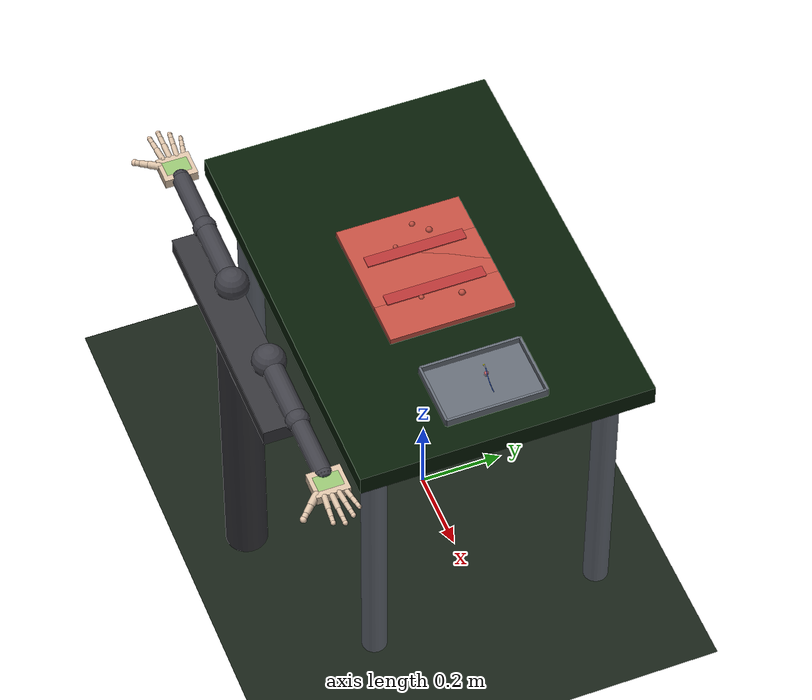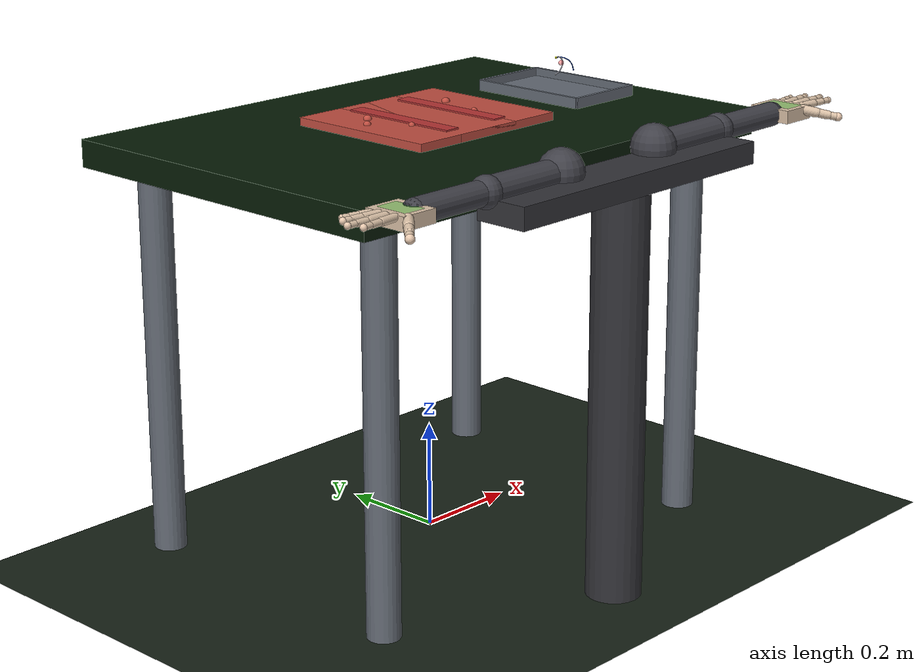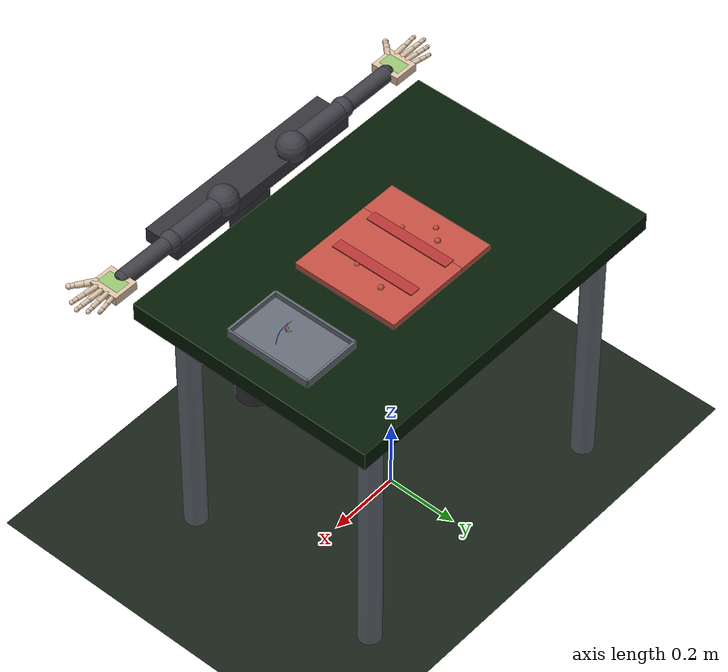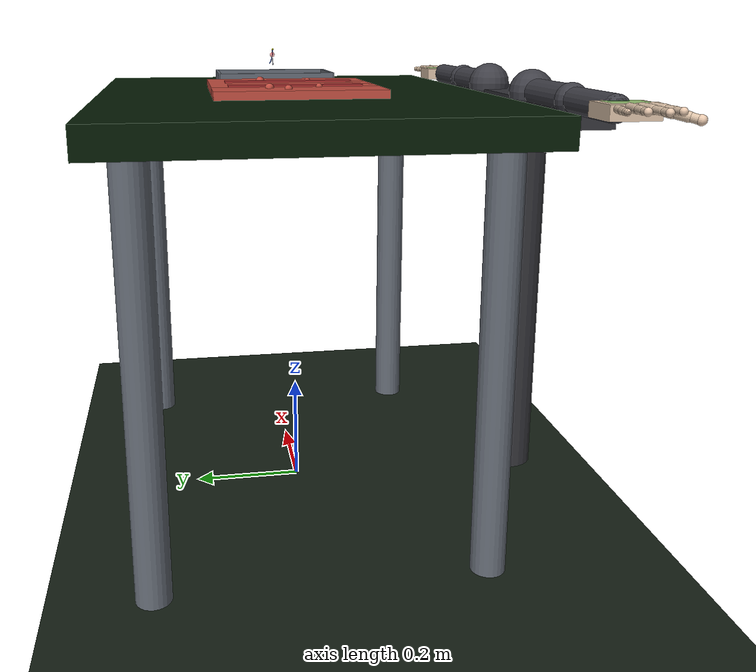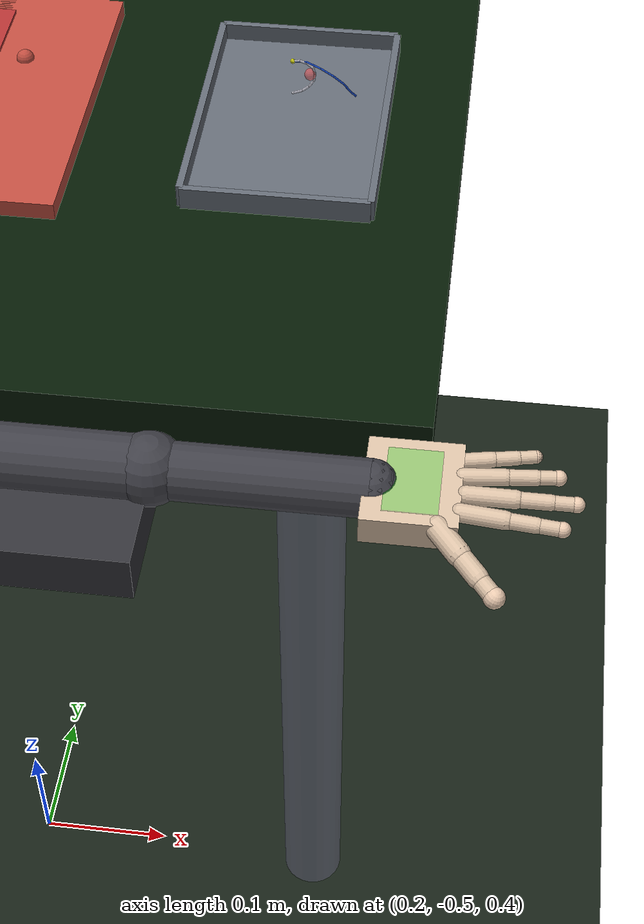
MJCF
<mujoco model="prometheus_surgical_robot">  <compiler autolimits="true" angle="radian"/>  <option timestep="0.001" integrator="Euler" cone="elliptic" solver="CG"          iterations="100" tolerance="1e-8" gravity="0 0 -9.81">    <flag contact="enable" constraint="enable" sensor="enable"/>  </option>  <size nconmax="2000" njmax="4000"/>  <!-- GòÉGòÉGòÉGòÉGòÉGòÉGòÉGòÉGòÉGòÉGòÉGòÉGòÉGòÉGòÉGòÉGòÉGòÉGòÉ VISUAL SETTINGS GòÉGòÉGòÉGòÉGòÉGòÉGòÉGòÉGòÉGòÉGòÉGòÉGòÉGòÉGòÉGòÉGòÉGòÉGòÉ -->  <visual>    <headlight diffuse="0.6 0.6 0.6" ambient="0.3 0.3 0.3" specular="0.2 0.2 0.2"/>    <rgba haze="0.15 0.25 0.35 1"/>    <quality shadowsize="4096"/>    <map znear="0.001" zfar="50" force="0.05"/>    <global offwidth="1920" offheight="1080"/>  </visual>  <!-- GòÉGòÉGòÉGòÉGòÉGòÉGòÉGòÉGòÉGòÉGòÉGòÉGòÉGòÉGòÉGòÉGòÉGòÉGòÉ DEFAULTS GòÉGòÉGòÉGòÉGòÉGòÉGòÉGòÉGòÉGòÉGòÉGòÉGòÉGòÉGòÉGòÉGòÉGòÉGòÉ -->  <default>    <!-- Arm defaults -->    <default class="arm_joint">      <joint type="hinge" damping="20.0" armature="1.0" frictionloss="1.0"/>      <geom type="capsule" rgba="0.25 0.25 0.28 1" contype="0" conaffinity="0"/>    </default>    <!-- Hand defaults -->    <default class="finger_joint">      <joint type="hinge" damping="1.0" armature="0.1" frictionloss="0.1"/>    </default>    <default class="finger_geom">      <geom type="capsule" rgba="0.85 0.75 0.65 1" contype="0" conaffinity="0"            friction="1.5 0.005 0.001" solimp="0.95 0.99 0.001" solref="0.004 1"/>    </default>    <default class="fingertip_geom">      <geom type="sphere" rgba="0.90 0.78 0.68 1" contype="0" conaffinity="0"            friction="2.0 0.01 0.001" solimp="0.95 0.99 0.001" solref="0.004 1"/>    </default>    <!-- Surgical tool defaults -->    <default class="needle_geom">      <geom type="capsule" rgba="0.75 0.75 0.80 1" contype="2" conaffinity="3"            friction="1.0 0.005 0.001" mass="0.005"/>    </default>    <default class="thread_geom">      <geom type="capsule" rgba="0.1 0.3 0.8 1" contype="2" conaffinity="3"            friction="0.8 0.005 0.001" mass="0.01"/>    </default>    <!-- Tissue defaults -->    <default class="tissue_geom">      <geom type="box" rgba="0.85 0.55 0.50 1" contype="4" conaffinity="7"            friction="1.2 0.01 0.001" solimp="0.90 0.95 0.005" solref="0.01 1.5"/>    </default>    <!-- Actuator defaults -->    <default class="arm_actuator">      <position kp="500" kv="50" ctrlrange="-3.14 3.14" forcerange="-200 200"/>    </default>    <default class="finger_actuator">      <position kp="10" kv="1" forcerange="-5 5"/>    </default>  </default>  <!-- GòÉGòÉGòÉGòÉGòÉGòÉGòÉGòÉGòÉGòÉGòÉGòÉGòÉGòÉGòÉGòÉGòÉGòÉGòÉ ASSETS GòÉGòÉGòÉGòÉGòÉGòÉGòÉGòÉGòÉGòÉGòÉGòÉGòÉGòÉGòÉGòÉGòÉGòÉGòÉ -->  <asset>    <!-- Textures -->    <texture name="grid_tex" type="2d" builtin="checker" rgb1="0.08 0.12 0.08"             rgb2="0.10 0.14 0.10" width="512" height="512"/>    <texture name="steel_tex" type="2d" builtin="flat" rgb1="0.6 0.62 0.65"             width="64" height="64"/>    <texture name="tissue_tex" type="2d" builtin="flat" rgb1="0.85 0.55 0.50"             width="64" height="64"/>    <texture name="table_tex" type="2d" builtin="flat" rgb1="0.15 0.30 0.15"             width="64" height="64"/>    <texture name="sky_tex" type="skybox" builtin="gradient"             rgb1="0.05 0.08 0.15" rgb2="0.15 0.20 0.30" width="256" height="256"/>    <!-- Materials -->    <material name="floor_mat" texture="grid_tex" texrepeat="10 10"              reflectance="0.15" specular="0.2" shininess="0.3"/>    <material name="steel_mat" texture="steel_tex" specular="0.8" shininess="0.9"              reflectance="0.3" rgba="0.65 0.67 0.70 1"/>    <material name="table_mat" texture="table_tex" specular="0.1" shininess="0.3"              rgba="0.15 0.35 0.15 1"/>    <material name="tissue_mat" texture="tissue_tex" specular="0.1" shininess="0.1"              rgba="0.88 0.55 0.50 1"/>    <material name="skin_mat" specular="0.05" shininess="0.1"              rgba="0.85 0.75 0.65 1"/>    <material name="robot_mat" specular="0.6" shininess="0.7"              rgba="0.25 0.25 0.28 1"/>    <material name="needle_mat" specular="0.9" shininess="0.95"              rgba="0.78 0.78 0.82 1" reflectance="0.4"/>    <material name="thread_mat" specular="0.1" shininess="0.1"              rgba="0.1 0.3 0.8 1"/>    <material name="wound_mat" specular="0.05" shininess="0.1"              rgba="0.7 0.2 0.2 1"/>    <material name="base_mat" specular="0.4" shininess="0.5"              rgba="0.2 0.2 0.22 1"/>  </asset>  <!-- GòÉGòÉGòÉGòÉGòÉGòÉGòÉGòÉGòÉGòÉGòÉGòÉGòÉGòÉGòÉGòÉGòÉGòÉGòÉ WORLDBODY GòÉGòÉGòÉGòÉGòÉGòÉGòÉGòÉGòÉGòÉGòÉGòÉGòÉGòÉGòÉGòÉGòÉGòÉGòÉ -->  <worldbody>    <!-- Lighting -->    <light name="overhead_light" pos="0 0 2.5" dir="0 0 -1" diffuse="0.8 0.8 0.85"           specular="0.5 0.5 0.5" ambient="0.15 0.15 0.18" castshadow="true"           cutoff="60" directional="false"/>    <light name="surgical_light_1" pos="0.3 0.3 1.8" dir="-0.2 -0.2 -1"           diffuse="0.9 0.9 0.95" specular="0.7 0.7 0.7" castshadow="true"           cutoff="45"/>    <light name="surgical_light_2" pos="-0.3 -0.3 1.8" dir="0.2 0.2 -1"           diffuse="0.7 0.7 0.75" specular="0.4 0.4 0.4" castshadow="true"           cutoff="45"/>    <light name="fill_light" pos="0 1.5 1.0" dir="0 -1 -0.3"           diffuse="0.3 0.3 0.35" castshadow="false"/>    <!-- Floor -->    <geom name="floor" type="plane" size="5 5 0.01" material="floor_mat"          contype="8" conaffinity="8"/>    <!-- GòÉGòÉGòÉGòÉGòÉGòÉGòÉGòÉGòÉGòÉGòÉGòÉGòÉGòÉGòÉ CAMERAS GòÉGòÉGòÉGòÉGòÉGòÉGòÉGòÉGòÉGòÉGòÉGòÉGòÉGòÉGòÉ -->    <camera name="overview" pos="0.8 -1.0 1.5" xyaxes="0.8 0.6 0 -0.3 0.4 0.86"            fovy="50"/>    <camera name="top_down" pos="0 0 2.0" xyaxes="1 0 0 0 1 0" fovy="40"/>    <camera name="hands_close" pos="0.0 -0.4 1.15" xyaxes="1 0 0 0 0.3 0.95"            fovy="35"/>    <camera name="right_side" pos="0.8 0 1.1" xyaxes="0 1 0 -0.3 0 0.95"            fovy="45"/>    <camera name="left_side" pos="-0.8 0 1.1" xyaxes="0 -1 0 0.3 0 0.95"            fovy="45"/>    <camera name="detail" pos="0.05 -0.25 1.12" xyaxes="1 0 0 0 0.2 0.98"            fovy="25"/>    <!-- GòÉGòÉGòÉGòÉGòÉGòÉGòÉGòÉGòÉGòÉGòÉGòÉGòÉGòÉGòÉ OPERATING TABLE GòÉGòÉGòÉGòÉGòÉGòÉGòÉGòÉGòÉGòÉGòÉGòÉGòÉGòÉGòÉ -->    <body name="table" pos="0 0 0.75">      <geom name="table_top" type="box" size="0.5 0.35 0.025" material="table_mat"/>      <geom name="table_leg_1" type="cylinder" fromto="-0.4 -0.28 -0.025 -0.4 -0.28 -0.75"            size="0.03" material="steel_mat"/>      <geom name="table_leg_2" type="cylinder" fromto="0.4 -0.28 -0.025 0.4 -0.28 -0.75"            size="0.03" material="steel_mat"/>      <geom name="table_leg_3" type="cylinder" fromto="-0.4 0.28 -0.025 -0.4 0.28 -0.75"            size="0.03" material="steel_mat"/>      <geom name="table_leg_4" type="cylinder" fromto="0.4 0.28 -0.025 0.4 0.28 -0.75"            size="0.03" material="steel_mat"/>      <!-- GòÉGòÉGòÉGòÉGòÉGòÉGòÉGòÉGòÉGòÉGòÉ TISSUE PAD (Left side of wound) GòÉGòÉGòÉGòÉGòÉGòÉGòÉGòÉGòÉGòÉGòÉ -->      <body name="tissue_pad_left" pos="-0.05 0 0.025">        <geom name="tissue_left_base" type="box" size="0.12 0.15 0.015" material="tissue_mat"/>        <!-- Wound edge GÇö slightly raised -->        <geom name="wound_edge_left" type="box" pos="0.11 0 0.01" size="0.015 0.12 0.008"              material="wound_mat"/>        <!-- Surface detail bumps for realism -->        <geom name="tissue_detail_l1" type="sphere" pos="-0.05 0.05 0.015" size="0.008"              material="tissue_mat" contype="0" conaffinity="0"/>        <geom name="tissue_detail_l2" type="sphere" pos="-0.03 -0.04 0.015" size="0.006"              material="tissue_mat" contype="0" conaffinity="0"/>        <geom name="tissue_detail_l3" type="sphere" pos="-0.08 0.02 0.015" size="0.007"              material="tissue_mat" contype="0" conaffinity="0"/>        <!-- Suture entry point markers -->        <site name="entry_point_1" pos="0.10 0.06 0.015" size="0.003" rgba="0 1 0 0.8"/>        <site name="entry_point_2" pos="0.10 0.02 0.015" size="0.003" rgba="0 1 0 0.8"/>        <site name="entry_point_3" pos="0.10 -0.02 0.015" size="0.003" rgba="0 1 0 0.8"/>        <site name="entry_point_4" pos="0.10 -0.06 0.015" size="0.003" rgba="0 1 0 0.8"/>      </body>      <!-- GòÉGòÉGòÉGòÉGòÉGòÉGòÉGòÉGòÉGòÉGòÉ TISSUE PAD (Right side of wound) GòÉGòÉGòÉGòÉGòÉGòÉGòÉGòÉGòÉGòÉGòÉ -->      <body name="tissue_pad_right" pos="0.05 0 0.025">        <geom name="tissue_right_base" type="box" size="0.12 0.15 0.015" material="tissue_mat"/>        <!-- Wound edge -->        <geom name="wound_edge_right" type="box" pos="-0.11 0 0.01" size="0.015 0.12 0.008"              material="wound_mat"/>        <!-- Surface detail bumps -->        <geom name="tissue_detail_r1" type="sphere" pos="0.05 0.05 0.015" size="0.008"              material="tissue_mat" contype="0" conaffinity="0"/>        <geom name="tissue_detail_r2" type="sphere" pos="0.03 -0.04 0.015" size="0.006"              material="tissue_mat" contype="0" conaffinity="0"/>        <!-- Suture exit point markers -->        <site name="exit_point_1" pos="-0.10 0.06 0.015" size="0.003" rgba="1 0.5 0 0.8"/>        <site name="exit_point_2" pos="-0.10 0.02 0.015" size="0.003" rgba="1 0.5 0 0.8"/>        <site name="exit_point_3" pos="-0.10 -0.02 0.015" size="0.003" rgba="1 0.5 0 0.8"/>        <site name="exit_point_4" pos="-0.10 -0.06 0.015" size="0.003" rgba="1 0.5 0 0.8"/>      </body>      <!-- Wound gap visualization -->      <geom name="wound_gap" type="box" pos="0 0 0.02" size="0.008 0.12 0.012"            rgba="0.5 0.15 0.15 0.6" contype="0" conaffinity="0"/>      <!-- Instrument tray -->      <body name="instrument_tray" pos="0.35 0 0.025">        <geom name="tray_base" type="box" size="0.08 0.12 0.005" material="steel_mat"/>        <geom name="tray_rim_1" type="box" pos="0 -0.12 0.01" size="0.08 0.003 0.01"              material="steel_mat"/>        <geom name="tray_rim_2" type="box" pos="0 0.12 0.01" size="0.08 0.003 0.01"              material="steel_mat"/>        <geom name="tray_rim_3" type="box" pos="-0.08 0 0.01" size="0.003 0.12 0.01"              material="steel_mat"/>        <geom name="tray_rim_4" type="box" pos="0.08 0 0.01" size="0.003 0.12 0.01"              material="steel_mat"/>      </body>    </body>    <!-- GòÉGòÉGòÉGòÉGòÉGòÉGòÉGòÉGòÉGòÉGòÉGòÉGòÉGòÉGòÉGòÉGòÉGòÉGòÉ ROBOT BASE GòÉGòÉGòÉGòÉGòÉGòÉGòÉGòÉGòÉGòÉGòÉGòÉGòÉGòÉGòÉGòÉGòÉGòÉGòÉ -->    <body name="robot_base" pos="0 -0.45 0.75">      <geom name="base_plate" type="box" size="0.3 0.05 0.02" material="base_mat"/>      <geom name="base_pillar" type="cylinder" fromto="0 0 -0.02 0 0 -0.75"            size="0.05" material="base_mat"/>      <!-- GòÉGòÉGòÉGòÉGòÉGòÉGòÉGòÉGòÉGòÉGòÉGòÉGòÉGòÉGòÉ RIGHT ARM (7-DOF) GòÉGòÉGòÉGòÉGòÉGòÉGòÉGòÉGòÉGòÉGòÉGòÉGòÉGòÉGòÉ -->      <body name="right_shoulder_base" pos="0.12 0.03 0.03">        <geom name="r_shoulder_housing" type="sphere" size="0.04" material="robot_mat"/>        <joint name="r_shoulder_yaw" class="arm_joint" axis="0 0 1" range="-2.0 2.0"/>        <joint name="r_shoulder_pitch" class="arm_joint" axis="0 1 0" range="-1.57 2.5"/>        <joint name="r_shoulder_roll" class="arm_joint" axis="1 0 0" range="-1.57 1.57"/>        <geom name="r_upper_arm" type="capsule" fromto="0 0 0 0.18 0 0"              size="0.025" material="robot_mat"/>        <body name="right_elbow" pos="0.18 0 0">          <geom name="r_elbow_joint_geom" type="sphere" size="0.028" material="robot_mat"/>          <joint name="r_elbow_flex" class="arm_joint" axis="0 1 0" range="0 2.5"/>          <geom name="r_forearm" type="capsule" fromto="0 0 0 0.16 0 0"                size="0.022" material="robot_mat"/>          <body name="right_wrist" pos="0.16 0 0">            <geom name="r_wrist_geom" type="sphere" size="0.022" material="robot_mat"/>            <joint name="r_wrist_pronation" class="arm_joint" axis="1 0 0" range="-1.57 1.57" damping="5.0"/>            <joint name="r_wrist_flex" class="arm_joint" axis="0 1 0" range="-1.0 1.0" damping="5.0"/>            <joint name="r_wrist_dev" class="arm_joint" axis="0 0 1" range="-0.5 0.5" damping="5.0"/>            <body name="r_palm" pos="0.03 0 0">              <geom name="r_palm_geom" type="box" size="0.035 0.04 0.012" material="skin_mat"/>              <site name="r_palm_touch" pos="0 0 0.012" size="0.02 0.03 0.001" type="box" rgba="0 0.8 0 0.3"/>              <body name="r_thumb_cmc" pos="0.02 -0.035 0.005" euler="0 0.3 -0.8">                <geom name="r_thumb_cmc_geom" class="finger_geom" fromto="0 0 0 0.025 0 0" size="0.009"/>                <joint name="r_thumb_cmc_flex" class="finger_joint" axis="0 1 0" range="-0.2 1.4"/>                <joint name="r_thumb_cmc_abd" class="finger_joint" axis="0 0 1" range="-0.5 0.5"/>                <body name="r_thumb_mcp" pos="0.025 0 0">                  <geom name="r_thumb_mcp_geom" class="finger_geom" fromto="0 0 0 0.022 0 0" size="0.008"/>                  <joint name="r_thumb_mcp_flex" class="finger_joint" axis="0 1 0" range="-0.1 1.2"/>                  <body name="r_thumb_ip" pos="0.022 0 0">                    <geom name="r_thumb_ip_geom" class="finger_geom" fromto="0 0 0 0.018 0 0" size="0.007"/>                    <joint name="r_thumb_ip_flex" class="finger_joint" axis="0 1 0" range="-0.1 1.0"/>                    <body name="r_thumb_tip" pos="0.018 0 0">                      <geom name="r_thumb_tip_geom" class="fingertip_geom" size="0.008"/>                      <site name="r_thumb_touch" pos="0 0 0" size="0.008" rgba="0 0.8 0 0.3"/>                    </body>                  </body>                </body>              </body>              <body name="r_index_mcp_base" pos="0.035 -0.022 0.008" euler="0 0 -0.1">                <joint name="r_index_abd" class="finger_joint" axis="0 0 1" range="-0.3 0.3"/>                <joint name="r_index_mcp_flex" class="finger_joint" axis="0 1 0" range="-0.2 1.57"/>                <geom name="r_index_prox" class="finger_geom" fromto="0 0 0 0.032 0 0" size="0.007"/>                <body name="r_index_pip" pos="0.032 0 0">                  <joint name="r_index_pip_flex" class="finger_joint" axis="0 1 0" range="0 1.8"/>                  <geom name="r_index_mid" class="finger_geom" fromto="0 0 0 0.022 0 0" size="0.006"/>                  <body name="r_index_dip" pos="0.022 0 0">                    <joint name="r_index_dip_flex" class="finger_joint" axis="0 1 0" range="0 1.3"/>                    <geom name="r_index_dist" class="finger_geom" fromto="0 0 0 0.018 0 0" size="0.0055"/>                    <body name="r_index_tip" pos="0.018 0 0">                      <geom name="r_index_tip_geom" class="fingertip_geom" size="0.006"/>                      <site name="r_index_touch" pos="0 0 0" size="0.006" rgba="0 0.8 0 0.3"/>                    </body>                  </body>                </body>              </body>              <body name="r_middle_mcp_base" pos="0.038 -0.005 0.008">                <joint name="r_middle_abd" class="finger_joint" axis="0 0 1" range="-0.2 0.2"/>                <joint name="r_middle_mcp_flex" class="finger_joint" axis="0 1 0" range="-0.2 1.57"/>                <geom name="r_middle_prox" class="finger_geom" fromto="0 0 0 0.035 0 0" size="0.007"/>                <body name="r_middle_pip" pos="0.035 0 0">                  <joint name="r_middle_pip_flex" class="finger_joint" axis="0 1 0" range="0 1.8"/>                  <geom name="r_middle_mid" class="finger_geom" fromto="0 0 0 0.025 0 0" size="0.006"/>                  <body name="r_middle_dip" pos="0.025 0 0">                    <joint name="r_middle_dip_flex" class="finger_joint" axis="0 1 0" range="0 1.3"/>                    <geom name="r_middle_dist" class="finger_geom" fromto="0 0 0 0.018 0 0" size="0.0055"/>                    <body name="r_middle_tip" pos="0.018 0 0">                      <geom name="r_middle_tip_geom" class="fingertip_geom" size="0.006"/>                      <site name="r_middle_touch" pos="0 0 0" size="0.006" rgba="0 0.8 0 0.3"/>                    </body>                  </body>                </body>              </body>              <body name="r_ring_mcp_base" pos="0.035 0.012 0.008" euler="0 0 0.1">                <joint name="r_ring_abd" class="finger_joint" axis="0 0 1" range="-0.2 0.2"/>                <joint name="r_ring_mcp_flex" class="finger_joint" axis="0 1 0" range="-0.2 1.57"/>                <geom name="r_ring_prox" class="finger_geom" fromto="0 0 0 0.030 0 0" size="0.0065"/>                <body name="r_ring_pip" pos="0.030 0 0">                  <joint name="r_ring_pip_flex" class="finger_joint" axis="0 1 0" range="0 1.8"/>                  <geom name="r_ring_mid" class="finger_geom" fromto="0 0 0 0.022 0 0" size="0.006"/>                  <body name="r_ring_dip" pos="0.022 0 0">                    <joint name="r_ring_dip_flex" class="finger_joint" axis="0 1 0" range="0 1.3"/>                    <geom name="r_ring_dist" class="finger_geom" fromto="0 0 0 0.016 0 0" size="0.0055"/>                    <body name="r_ring_tip" pos="0.016 0 0">                      <geom name="r_ring_tip_geom" class="fingertip_geom" size="0.006"/>                      <site name="r_ring_touch" pos="0 0 0" size="0.006" rgba="0 0.8 0 0.3"/>                    </body>                  </body>                </body>              </body>              <body name="r_little_mcp_base" pos="0.030 0.028 0.006" euler="0 0 0.2">                <joint name="r_little_abd" class="finger_joint" axis="0 0 1" range="-0.3 0.3"/>                <joint name="r_little_mcp_flex" class="finger_joint" axis="0 1 0" range="-0.2 1.57"/>                <geom name="r_little_prox" class="finger_geom" fromto="0 0 0 0.025 0 0" size="0.006"/>                <body name="r_little_pip" pos="0.025 0 0">                  <joint name="r_little_pip_flex" class="finger_joint" axis="0 1 0" range="0 1.8"/>                  <geom name="r_little_mid" class="finger_geom" fromto="0 0 0 0.018 0 0" size="0.0055"/>                  <body name="r_little_dip" pos="0.018 0 0">                    <joint name="r_little_dip_flex" class="finger_joint" axis="0 1 0" range="0 1.3"/>                    <geom name="r_little_dist" class="finger_geom" fromto="0 0 0 0.014 0 0" size="0.005"/>                    <body name="r_little_tip" pos="0.014 0 0">                      <geom name="r_little_tip_geom" class="fingertip_geom" size="0.005"/>                      <site name="r_little_touch" pos="0 0 0" size="0.005" rgba="0 0.8 0 0.3"/>                    </body>                  </body>                </body>              </body>            </body>          </body>        </body>      </body>      <!-- GòÉGòÉGòÉGòÉGòÉGòÉGòÉGòÉGòÉGòÉGòÉGòÉGòÉGòÉGòÉ LEFT ARM (7-DOF) GÇö Mirror of Right GòÉGòÉGòÉGòÉGòÉGòÉGòÉGòÉGòÉGòÉGòÉGòÉGòÉGòÉGòÉ -->      <body name="left_shoulder_base" pos="-0.12 0.03 0.03">        <geom name="l_shoulder_housing" type="sphere" size="0.04" material="robot_mat"/>        <joint name="l_shoulder_yaw" class="arm_joint" axis="0 0 1" range="-2.0 2.0"/>        <joint name="l_shoulder_pitch" class="arm_joint" axis="0 1 0" range="-1.57 2.5"/>        <joint name="l_shoulder_roll" class="arm_joint" axis="1 0 0" range="-1.57 1.57"/>        <geom name="l_upper_arm" type="capsule" fromto="0 0 0 -0.18 0 0"              size="0.025" material="robot_mat"/>        <body name="left_elbow" pos="-0.18 0 0">          <geom name="l_elbow_joint_geom" type="sphere" size="0.028" material="robot_mat"/>          <joint name="l_elbow_flex" class="arm_joint" axis="0 1 0" range="0 2.5"/>          <geom name="l_forearm" type="capsule" fromto="0 0 0 -0.16 0 0"                size="0.022" material="robot_mat"/>          <body name="left_wrist" pos="-0.16 0 0">            <geom name="l_wrist_geom" type="sphere" size="0.022" material="robot_mat"/>            <joint name="l_wrist_pronation" class="arm_joint" axis="1 0 0" range="-1.57 1.57" damping="5.0"/>            <joint name="l_wrist_flex" class="arm_joint" axis="0 1 0" range="-1.0 1.0" damping="5.0"/>            <joint name="l_wrist_dev" class="arm_joint" axis="0 0 1" range="-0.5 0.5" damping="5.0"/>            <body name="l_palm" pos="-0.03 0 0">              <geom name="l_palm_geom" type="box" size="0.035 0.04 0.012" material="skin_mat"/>              <site name="l_palm_touch" pos="0 0 0.012" size="0.02 0.03 0.001" type="box" rgba="0 0.8 0 0.3"/>              <body name="l_thumb_cmc" pos="-0.02 -0.035 0.005" euler="0 -0.3 0.8">                <geom name="l_thumb_cmc_geom" class="finger_geom" fromto="0 0 0 -0.025 0 0" size="0.009"/>                <joint name="l_thumb_cmc_flex" class="finger_joint" axis="0 1 0" range="-0.2 1.4"/>                <joint name="l_thumb_cmc_abd" class="finger_joint" axis="0 0 1" range="-0.5 0.5"/>                <body name="l_thumb_mcp" pos="-0.025 0 0">                  <geom name="l_thumb_mcp_geom" class="finger_geom" fromto="0 0 0 -0.022 0 0" size="0.008"/>                  <joint name="l_thumb_mcp_flex" class="finger_joint" axis="0 1 0" range="-0.1 1.2"/>                  <body name="l_thumb_ip" pos="-0.022 0 0">                    <geom name="l_thumb_ip_geom" class="finger_geom" fromto="0 0 0 -0.018 0 0" size="0.007"/>                    <joint name="l_thumb_ip_flex" class="finger_joint" axis="0 1 0" range="-0.1 1.0"/>                    <body name="l_thumb_tip" pos="-0.018 0 0">                      <geom name="l_thumb_tip_geom" class="fingertip_geom" size="0.008"/>                      <site name="l_thumb_touch" pos="0 0 0" size="0.008" rgba="0 0.8 0 0.3"/>                    </body>                  </body>                </body>              </body>              <body name="l_index_mcp_base" pos="-0.035 -0.022 0.008" euler="0 0 0.1">                <joint name="l_index_abd" class="finger_joint" axis="0 0 1" range="-0.3 0.3"/>                <joint name="l_index_mcp_flex" class="finger_joint" axis="0 1 0" range="-0.2 1.57"/>                <geom name="l_index_prox" class="finger_geom" fromto="0 0 0 -0.032 0 0" size="0.007"/>                <body name="l_index_pip" pos="-0.032 0 0">                  <joint name="l_index_pip_flex" class="finger_joint" axis="0 1 0" range="0 1.8"/>                  <geom name="l_index_mid" class="finger_geom" fromto="0 0 0 -0.022 0 0" size="0.006"/>                  <body name="l_index_dip" pos="-0.022 0 0">                    <joint name="l_index_dip_flex" class="finger_joint" axis="0 1 0" range="0 1.3"/>                    <geom name="l_index_dist" class="finger_geom" fromto="0 0 0 -0.018 0 0" size="0.0055"/>                    <body name="l_index_tip" pos="-0.018 0 0">                      <geom name="l_index_tip_geom" class="fingertip_geom" size="0.006"/>                      <site name="l_index_touch" pos="0 0 0" size="0.006" rgba="0 0.8 0 0.3"/>                    </body>                  </body>                </body>              </body>              <body name="l_middle_mcp_base" pos="-0.038 -0.005 0.008">                <joint name="l_middle_abd" class="finger_joint" axis="0 0 1" range="-0.2 0.2"/>                <joint name="l_middle_mcp_flex" class="finger_joint" axis="0 1 0" range="-0.2 1.57"/>                <geom name="l_middle_prox" class="finger_geom" fromto="0 0 0 -0.035 0 0" size="0.007"/>                <body name="l_middle_pip" pos="-0.035 0 0">                  <joint name="l_middle_pip_flex" class="finger_joint" axis="0 1 0" range="0 1.8"/>                  <geom name="l_middle_mid" class="finger_geom" fromto="0 0 0 -0.025 0 0" size="0.006"/>                  <body name="l_middle_dip" pos="-0.025 0 0">                    <joint name="l_middle_dip_flex" class="finger_joint" axis="0 1 0" range="0 1.3"/>                    <geom name="l_middle_dist" class="finger_geom" fromto="0 0 0 -0.018 0 0" size="0.0055"/>                    <body name="l_middle_tip" pos="-0.018 0 0">                      <geom name="l_middle_tip_geom" class="fingertip_geom" size="0.006"/>                      <site name="l_middle_touch" pos="0 0 0" size="0.006" rgba="0 0.8 0 0.3"/>                    </body>                  </body>                </body>              </body>              <body name="l_ring_mcp_base" pos="-0.035 0.012 0.008" euler="0 0 -0.1">                <joint name="l_ring_abd" class="finger_joint" axis="0 0 1" range="-0.2 0.2"/>                <joint name="l_ring_mcp_flex" class="finger_joint" axis="0 1 0" range="-0.2 1.57"/>                <geom name="l_ring_prox" class="finger_geom" fromto="0 0 0 -0.030 0 0" size="0.0065"/>                <body name="l_ring_pip" pos="-0.030 0 0">                  <joint name="l_ring_pip_flex" class="finger_joint" axis="0 1 0" range="0 1.8"/>                  <geom name="l_ring_mid" class="finger_geom" fromto="0 0 0 -0.022 0 0" size="0.006"/>                  <body name="l_ring_dip" pos="-0.022 0 0">                    <joint name="l_ring_dip_flex" class="finger_joint" axis="0 1 0" range="0 1.3"/>                    <geom name="l_ring_dist" class="finger_geom" fromto="0 0 0 -0.016 0 0" size="0.0055"/>                    <body name="l_ring_tip" pos="-0.016 0 0">                      <geom name="l_ring_tip_geom" class="fingertip_geom" size="0.006"/>                      <site name="l_ring_touch" pos="0 0 0" size="0.006" rgba="0 0.8 0 0.3"/>                    </body>                  </body>                </body>              </body>              <body name="l_little_mcp_base" pos="-0.030 0.028 0.006" euler="0 0 -0.2">                <joint name="l_little_abd" class="finger_joint" axis="0 0 1" range="-0.3 0.3"/>                <joint name="l_little_mcp_flex" class="finger_joint" axis="0 1 0" range="-0.2 1.57"/>                <geom name="l_little_prox" class="finger_geom" fromto="0 0 0 -0.025 0 0" size="0.006"/>                <body name="l_little_pip" pos="-0.025 0 0">                  <joint name="l_little_pip_flex" class="finger_joint" axis="0 1 0" range="0 1.8"/>                  <geom name="l_little_mid" class="finger_geom" fromto="0 0 0 -0.018 0 0" size="0.0055"/>                  <body name="l_little_dip" pos="-0.018 0 0">                    <joint name="l_little_dip_flex" class="finger_joint" axis="0 1 0" range="0 1.3"/>                    <geom name="l_little_dist" class="finger_geom" fromto="0 0 0 -0.014 0 0" size="0.005"/>                    <body name="l_little_tip" pos="-0.014 0 0">                      <geom name="l_little_tip_geom" class="fingertip_geom" size="0.005"/>                      <site name="l_little_touch" pos="0 0 0" size="0.005" rgba="0 0.8 0 0.3"/>                    </body>                  </body>                </body>              </body>            </body>          </body>        </body>      </body>    </body> <!-- end robot_base -->    <!-- GòÉGòÉGòÉGòÉGòÉGòÉGòÉGòÉGòÉGòÉGòÉGòÉGòÉGòÉGòÉGòÉGòÉGòÉGòÉ SURGICAL NEEDLE GòÉGòÉGòÉGòÉGòÉGòÉGòÉGòÉGòÉGòÉGòÉGòÉGòÉGòÉGòÉGòÉGòÉGòÉGòÉ -->    <!-- Needle resting on instrument tray GÇö arms animate the suturing procedure -->    <body name="needle" pos="0.35 0 0.81">      <!-- Curved needle GÇö arc of small capsules -->      <geom name="needle_seg_1" class="needle_geom" fromto="0 0 0 0.008 0 0.003" size="0.001"            material="needle_mat"/>      <geom name="needle_seg_2" class="needle_geom" fromto="0.008 0 0.003 0.014 0 0.008" size="0.001"            material="needle_mat"/>      <geom name="needle_seg_3" class="needle_geom" fromto="0.014 0 0.008 0.018 0 0.014" size="0.001"            material="needle_mat"/>      <geom name="needle_seg_4" class="needle_geom" fromto="0.018 0 0.014 0.019 0 0.021" size="0.001"            material="needle_mat"/>      <geom name="needle_seg_5" class="needle_geom" fromto="0.019 0 0.021 0.017 0 0.027" size="0.001"            material="needle_mat"/>      <geom name="needle_seg_6" class="needle_geom" fromto="0.017 0 0.027 0.012 0 0.031" size="0.001"            material="needle_mat"/>      <geom name="needle_seg_7" class="needle_geom" fromto="0.012 0 0.031 0.006 0 0.033" size="0.001"            material="needle_mat"/>      <geom name="needle_seg_8" class="needle_geom" fromto="0.006 0 0.033 0 0 0.032" size="0.001"            material="needle_mat"/>      <!-- Needle tip -->      <geom name="needle_tip" type="sphere" pos="0 0 0" size="0.0012"            material="needle_mat" contype="0" conaffinity="0"/>      <!-- Needle eye -->      <site name="needle_eye" pos="0 0 0.032" size="0.002" rgba="1 1 0 0.8"/>      <!-- Grip site -->      <site name="needle_grip" pos="0.015 0 0.020" size="0.005" rgba="1 0.3 0.3 0.5"/>      <!-- GòÉGòÉGòÉGòÉGòÉGòÉGòÉ SUTURE THREAD (rigid, natural drape shape) GòÉGòÉGòÉGòÉGòÉGòÉGòÉ -->      <body name="thread_anchor" pos="0 0 0.032">        <geom name="thread_seg_0" class="thread_geom" fromto="0 0 0 0.012 0 0" size="0.0008"              material="thread_mat" contype="0" conaffinity="0"/>        <geom name="thread_seg_1" class="thread_geom" fromto="0.012 0 0 0.024 -0.002 -0.004" size="0.0008"              material="thread_mat" contype="0" conaffinity="0"/>        <geom name="thread_seg_2" class="thread_geom" fromto="0.024 -0.002 -0.004 0.035 -0.003 -0.010" size="0.0008"              material="thread_mat" contype="0" conaffinity="0"/>        <geom name="thread_seg_3" class="thread_geom" fromto="0.035 -0.003 -0.010 0.044 -0.002 -0.018" size="0.0008"              material="thread_mat" contype="0" conaffinity="0"/>        <geom name="thread_seg_4" class="thread_geom" fromto="0.044 -0.002 -0.018 0.050 0 -0.027" size="0.0008"              material="thread_mat" contype="0" conaffinity="0"/>        <geom name="thread_seg_5" class="thread_geom" fromto="0.050 0 -0.027 0.054 0.002 -0.032" size="0.0008"              material="thread_mat" contype="0" conaffinity="0"/>        <site name="thread_end" pos="0.054 0.002 -0.032" size="0.001"              rgba="0.1 0.3 0.8 1"/>      </body>    </body> <!-- end needle -->  </worldbody>  <!-- GòÉGòÉGòÉGòÉGòÉGòÉGòÉGòÉGòÉGòÉGòÉGòÉGòÉGòÉGòÉGòÉGòÉGòÉGòÉ TENDONS GòÉGòÉGòÉGòÉGòÉGòÉGòÉGòÉGòÉGòÉGòÉGòÉGòÉGòÉGòÉGòÉGòÉGòÉGòÉ -->  <!-- PIP-DIP coupling: DIP follows PIP at ~0.67 ratio (anatomically accurate) -->  <tendon>    <!-- Right hand PIP-DIP coupling -->    <fixed name="r_index_coupling" limited="true" range="-0.5 2.5">      <joint joint="r_index_pip_flex" coef="1"/>      <joint joint="r_index_dip_flex" coef="-0.67"/>    </fixed>    <fixed name="r_middle_coupling" limited="true" range="-0.5 2.5">      <joint joint="r_middle_pip_flex" coef="1"/>      <joint joint="r_middle_dip_flex" coef="-0.67"/>    </fixed>    <fixed name="r_ring_coupling" limited="true" range="-0.5 2.5">      <joint joint="r_ring_pip_flex" coef="1"/>      <joint joint="r_ring_dip_flex" coef="-0.67"/>    </fixed>    <fixed name="r_little_coupling" limited="true" range="-0.5 2.5">      <joint joint="r_little_pip_flex" coef="1"/>      <joint joint="r_little_dip_flex" coef="-0.67"/>    </fixed>    <!-- Left hand PIP-DIP coupling -->    <fixed name="l_index_coupling" limited="true" range="-0.5 2.5">      <joint joint="l_index_pip_flex" coef="1"/>      <joint joint="l_index_dip_flex" coef="-0.67"/>    </fixed>    <fixed name="l_middle_coupling" limited="true" range="-0.5 2.5">      <joint joint="l_middle_pip_flex" coef="1"/>      <joint joint="l_middle_dip_flex" coef="-0.67"/>    </fixed>    <fixed name="l_ring_coupling" limited="true" range="-0.5 2.5">      <joint joint="l_ring_pip_flex" coef="1"/>      <joint joint="l_ring_dip_flex" coef="-0.67"/>    </fixed>    <fixed name="l_little_coupling" limited="true" range="-0.5 2.5">      <joint joint="l_little_pip_flex" coef="1"/>      <joint joint="l_little_dip_flex" coef="-0.67"/>    </fixed>  </tendon>  <!-- GòÉGòÉGòÉGòÉGòÉGòÉGòÉGòÉGòÉGòÉGòÉGòÉGòÉGòÉGòÉGòÉGòÉGòÉGòÉ EQUALITY CONSTRAINTS GòÉGòÉGòÉGòÉGòÉGòÉGòÉGòÉGòÉGòÉGòÉGòÉGòÉGòÉGòÉGòÉGòÉGòÉGòÉ -->  <!-- Thread is physically attached to needle (child body), no weld needed -->  <equality>  </equality>  <!-- GòÉGòÉGòÉGòÉGòÉGòÉGòÉGòÉGòÉGòÉGòÉGòÉGòÉGòÉGòÉGòÉGòÉGòÉGòÉ CONTACT EXCLUSIONS GòÉGòÉGòÉGòÉGòÉGòÉGòÉGòÉGòÉGòÉGòÉGòÉGòÉGòÉGòÉGòÉGòÉGòÉGòÉ -->  <contact>    <!-- Exclude self-collisions between adjacent finger links (right hand) -->    <exclude body1="r_palm" body2="r_thumb_cmc"/>    <exclude body1="r_palm" body2="r_index_mcp_base"/>    <exclude body1="r_palm" body2="r_middle_mcp_base"/>    <exclude body1="r_palm" body2="r_ring_mcp_base"/>    <exclude body1="r_palm" body2="r_little_mcp_base"/>    <exclude body1="r_thumb_cmc" body2="r_thumb_mcp"/>    <exclude body1="r_thumb_mcp" body2="r_thumb_ip"/>    <exclude body1="r_index_mcp_base" body2="r_index_pip"/>    <exclude body1="r_index_pip" body2="r_index_dip"/>    <exclude body1="r_middle_mcp_base" body2="r_middle_pip"/>    <exclude body1="r_middle_pip" body2="r_middle_dip"/>    <exclude body1="r_ring_mcp_base" body2="r_ring_pip"/>    <exclude body1="r_ring_pip" body2="r_ring_dip"/>    <exclude body1="r_little_mcp_base" body2="r_little_pip"/>    <exclude body1="r_little_pip" body2="r_little_dip"/>    <!-- Exclude self-collisions between adjacent finger links (left hand) -->    <exclude body1="l_palm" body2="l_thumb_cmc"/>    <exclude body1="l_palm" body2="l_index_mcp_base"/>    <exclude body1="l_palm" body2="l_middle_mcp_base"/>    <exclude body1="l_palm" body2="l_ring_mcp_base"/>    <exclude body1="l_palm" body2="l_little_mcp_base"/>    <exclude body1="l_thumb_cmc" body2="l_thumb_mcp"/>    <exclude body1="l_thumb_mcp" body2="l_thumb_ip"/>    <exclude body1="l_index_mcp_base" body2="l_index_pip"/>    <exclude body1="l_index_pip" body2="l_index_dip"/>    <exclude body1="l_middle_mcp_base" body2="l_middle_pip"/>    <exclude body1="l_middle_pip" body2="l_middle_dip"/>    <exclude body1="l_ring_mcp_base" body2="l_ring_pip"/>    <exclude body1="l_ring_pip" body2="l_ring_dip"/>    <exclude body1="l_little_mcp_base" body2="l_little_pip"/>    <exclude body1="l_little_pip" body2="l_little_dip"/>    <!-- Exclude arm-to-palm collisions -->    <exclude body1="right_wrist" body2="r_palm"/>    <exclude body1="left_wrist" body2="l_palm"/>  </contact>  <!-- GòÉGòÉGòÉGòÉGòÉGòÉGòÉGòÉGòÉGòÉGòÉGòÉGòÉGòÉGòÉGòÉGòÉGòÉGòÉ SENSORS GòÉGòÉGòÉGòÉGòÉGòÉGòÉGòÉGòÉGòÉGòÉGòÉGòÉGòÉGòÉGòÉGòÉGòÉGòÉ -->  <sensor>    <!-- Joint position sensors (arms) -->    <jointpos name="r_shoulder_yaw_pos" joint="r_shoulder_yaw"/>    <jointpos name="r_shoulder_pitch_pos" joint="r_shoulder_pitch"/>    <jointpos name="r_shoulder_roll_pos" joint="r_shoulder_roll"/>    <jointpos name="r_elbow_flex_pos" joint="r_elbow_flex"/>    <jointpos name="r_wrist_pronation_pos" joint="r_wrist_pronation"/>    <jointpos name="r_wrist_flex_pos" joint="r_wrist_flex"/>    <jointpos name="r_wrist_dev_pos" joint="r_wrist_dev"/>    <jointpos name="l_shoulder_yaw_pos" joint="l_shoulder_yaw"/>    <jointpos name="l_shoulder_pitch_pos" joint="l_shoulder_pitch"/>    <jointpos name="l_shoulder_roll_pos" joint="l_shoulder_roll"/>    <jointpos name="l_elbow_flex_pos" joint="l_elbow_flex"/>    <jointpos name="l_wrist_pronation_pos" joint="l_wrist_pronation"/>    <jointpos name="l_wrist_flex_pos" joint="l_wrist_flex"/>    <jointpos name="l_wrist_dev_pos" joint="l_wrist_dev"/>    <!-- Joint velocity sensors (arms) -->    <jointvel name="r_shoulder_yaw_vel" joint="r_shoulder_yaw"/>    <jointvel name="r_elbow_flex_vel" joint="r_elbow_flex"/>    <jointvel name="l_shoulder_yaw_vel" joint="l_shoulder_yaw"/>    <jointvel name="l_elbow_flex_vel" joint="l_elbow_flex"/>    <!-- Touch sensors (fingertips) -->    <touch name="r_thumb_contact" site="r_thumb_touch"/>    <touch name="r_index_contact" site="r_index_touch"/>    <touch name="r_middle_contact" site="r_middle_touch"/>    <touch name="r_ring_contact" site="r_ring_touch"/>    <touch name="r_little_contact" site="r_little_touch"/>    <touch name="r_palm_contact" site="r_palm_touch"/>    <touch name="l_thumb_contact" site="l_thumb_touch"/>    <touch name="l_index_contact" site="l_index_touch"/>    <touch name="l_middle_contact" site="l_middle_touch"/>    <touch name="l_ring_contact" site="l_ring_touch"/>    <touch name="l_little_contact" site="l_little_touch"/>    <touch name="l_palm_contact" site="l_palm_touch"/>    <!-- Needle position tracking -->    <framepos name="needle_pos" objtype="body" objname="needle"/>    <framequat name="needle_quat" objtype="body" objname="needle"/>  </sensor>  <!-- GòÉGòÉGòÉGòÉGòÉGòÉGòÉGòÉGòÉGòÉGòÉGòÉGòÉGòÉGòÉGòÉGòÉGòÉGòÉ ACTUATORS GòÉGòÉGòÉGòÉGòÉGòÉGòÉGòÉGòÉGòÉGòÉGòÉGòÉGòÉGòÉGòÉGòÉGòÉGòÉ -->  <actuator>    <!-- GöÇGöÇGöÇ Right Arm (7 actuators) GöÇGöÇGöÇ -->    <position name="r_shoulder_yaw_act" joint="r_shoulder_yaw" class="arm_actuator"              ctrlrange="-2.0 2.0"/>    <position name="r_shoulder_pitch_act" joint="r_shoulder_pitch" class="arm_actuator"              ctrlrange="-1.57 2.5"/>    <position name="r_shoulder_roll_act" joint="r_shoulder_roll" class="arm_actuator"              ctrlrange="-1.57 1.57"/>    <position name="r_elbow_flex_act" joint="r_elbow_flex" class="arm_actuator"              ctrlrange="0 2.5"/>    <position name="r_wrist_pronation_act" joint="r_wrist_pronation" class="arm_actuator"              ctrlrange="-1.57 1.57" kp="50"/>    <position name="r_wrist_flex_act" joint="r_wrist_flex" class="arm_actuator"              ctrlrange="-1.0 1.0" kp="50"/>    <position name="r_wrist_dev_act" joint="r_wrist_dev" class="arm_actuator"              ctrlrange="-0.5 0.5" kp="50"/>    <!-- GöÇGöÇGöÇ Right Hand (20 actuators) GöÇGöÇGöÇ -->    <!-- Thumb -->    <position name="r_thumb_cmc_flex_act" joint="r_thumb_cmc_flex" class="finger_actuator"              ctrlrange="-0.2 1.4"/>    <position name="r_thumb_cmc_abd_act" joint="r_thumb_cmc_abd" class="finger_actuator"              ctrlrange="-0.5 0.5"/>    <position name="r_thumb_mcp_flex_act" joint="r_thumb_mcp_flex" class="finger_actuator"              ctrlrange="-0.1 1.2"/>    <position name="r_thumb_ip_flex_act" joint="r_thumb_ip_flex" class="finger_actuator"              ctrlrange="-0.1 1.0"/>    <!-- Index -->    <position name="r_index_abd_act" joint="r_index_abd" class="finger_actuator"              ctrlrange="-0.3 0.3"/>    <position name="r_index_mcp_flex_act" joint="r_index_mcp_flex" class="finger_actuator"              ctrlrange="-0.2 1.57"/>    <position name="r_index_pip_flex_act" joint="r_index_pip_flex" class="finger_actuator"              ctrlrange="0 1.8"/>    <position name="r_index_dip_flex_act" joint="r_index_dip_flex" class="finger_actuator"              ctrlrange="0 1.3"/>    <!-- Middle -->    <position name="r_middle_abd_act" joint="r_middle_abd" class="finger_actuator"              ctrlrange="-0.2 0.2"/>    <position name="r_middle_mcp_flex_act" joint="r_middle_mcp_flex" class="finger_actuator"              ctrlrange="-0.2 1.57"/>    <position name="r_middle_pip_flex_act" joint="r_middle_pip_flex" class="finger_actuator"              ctrlrange="0 1.8"/>    <position name="r_middle_dip_flex_act" joint="r_middle_dip_flex" class="finger_actuator"              ctrlrange="0 1.3"/>    <!-- Ring -->    <position name="r_ring_abd_act" joint="r_ring_abd" class="finger_actuator"              ctrlrange="-0.2 0.2"/>    <position name="r_ring_mcp_flex_act" joint="r_ring_mcp_flex" class="finger_actuator"              ctrlrange="-0.2 1.57"/>    <position name="r_ring_pip_flex_act" joint="r_ring_pip_flex" class="finger_actuator"              ctrlrange="0 1.8"/>    <position name="r_ring_dip_flex_act" joint="r_ring_dip_flex" class="finger_actuator"              ctrlrange="0 1.3"/>    <!-- Little -->    <position name="r_little_abd_act" joint="r_little_abd" class="finger_actuator"              ctrlrange="-0.3 0.3"/>    <position name="r_little_mcp_flex_act" joint="r_little_mcp_flex" class="finger_actuator"              ctrlrange="-0.2 1.57"/>    <position name="r_little_pip_flex_act" joint="r_little_pip_flex" class="finger_actuator"              ctrlrange="0 1.8"/>    <position name="r_little_dip_flex_act" joint="r_little_dip_flex" class="finger_actuator"              ctrlrange="0 1.3"/>    <!-- GöÇGöÇGöÇ Left Arm (7 actuators) GöÇGöÇGöÇ -->    <position name="l_shoulder_yaw_act" joint="l_shoulder_yaw" class="arm_actuator"              ctrlrange="-2.0 2.0"/>    <position name="l_shoulder_pitch_act" joint="l_shoulder_pitch" class="arm_actuator"              ctrlrange="-1.57 2.5"/>    <position name="l_shoulder_roll_act" joint="l_shoulder_roll" class="arm_actuator"              ctrlrange="-1.57 1.57"/>    <position name="l_elbow_flex_act" joint="l_elbow_flex" class="arm_actuator"              ctrlrange="0 2.5"/>    <position name="l_wrist_pronation_act" joint="l_wrist_pronation" class="arm_actuator"              ctrlrange="-1.57 1.57" kp="50"/>    <position name="l_wrist_flex_act" joint="l_wrist_flex" class="arm_actuator"              ctrlrange="-1.0 1.0" kp="50"/>    <position name="l_wrist_dev_act" joint="l_wrist_dev" class="arm_actuator"              ctrlrange="-0.5 0.5" kp="50"/>    <!-- GöÇGöÇGöÇ Left Hand (20 actuators) GöÇGöÇGöÇ -->    <!-- Thumb -->    <position name="l_thumb_cmc_flex_act" joint="l_thumb_cmc_flex" class="finger_actuator"              ctrlrange="-0.2 1.4"/>    <position name="l_thumb_cmc_abd_act" joint="l_thumb_cmc_abd" class="finger_actuator"              ctrlrange="-0.5 0.5"/>    <position name="l_thumb_mcp_flex_act" joint="l_thumb_mcp_flex" class="finger_actuator"              ctrlrange="-0.1 1.2"/>    <position name="l_thumb_ip_flex_act" joint="l_thumb_ip_flex" class="finger_actuator"              ctrlrange="-0.1 1.0"/>    <!-- Index -->    <position name="l_index_abd_act" joint="l_index_abd" class="finger_actuator"              ctrlrange="-0.3 0.3"/>    <position name="l_index_mcp_flex_act" joint="l_index_mcp_flex" class="finger_actuator"              ctrlrange="-0.2 1.57"/>    <position name="l_index_pip_flex_act" joint="l_index_pip_flex" class="finger_actuator"              ctrlrange="0 1.8"/>    <position name="l_index_dip_flex_act" joint="l_index_dip_flex" class="finger_actuator"              ctrlrange="0 1.3"/>    <!-- Middle -->    <position name="l_middle_abd_act" joint="l_middle_abd" class="finger_actuator"              ctrlrange="-0.2 0.2"/>    <position name="l_middle_mcp_flex_act" joint="l_middle_mcp_flex" class="finger_actuator"              ctrlrange="-0.2 1.57"/>    <position name="l_middle_pip_flex_act" joint="l_middle_pip_flex" class="finger_actuator"              ctrlrange="0 1.8"/>    <position name="l_middle_dip_flex_act" joint="l_middle_dip_flex" class="finger_actuator"              ctrlrange="0 1.3"/>    <!-- Ring -->    <position name="l_ring_abd_act" joint="l_ring_abd" class="finger_actuator"              ctrlrange="-0.2 0.2"/>    <position name="l_ring_mcp_flex_act" joint="l_ring_mcp_flex" class="finger_actuator"              ctrlrange="-0.2 1.57"/>    <position name="l_ring_pip_flex_act" joint="l_ring_pip_flex" class="finger_actuator"              ctrlrange="0 1.8"/>    <position name="l_ring_dip_flex_act" joint="l_ring_dip_flex" class="finger_actuator"              ctrlrange="0 1.3"/>    <!-- Little -->    <position name="l_little_abd_act" joint="l_little_abd" class="finger_actuator"              ctrlrange="-0.3 0.3"/>    <position name="l_little_mcp_flex_act" joint="l_little_mcp_flex" class="finger_actuator"              ctrlrange="-0.2 1.57"/>    <position name="l_little_pip_flex_act" joint="l_little_pip_flex" class="finger_actuator"              ctrlrange="0 1.8"/>    <position name="l_little_dip_flex_act" joint="l_little_dip_flex" class="finger_actuator"              ctrlrange="0 1.3"/>  </actuator>  <!-- GòÉGòÉGòÉGòÉGòÉGòÉGòÉGòÉGòÉGòÉGòÉGòÉGòÉGòÉGòÉGòÉGòÉGòÉGòÉ KEYFRAMES GòÉGòÉGòÉGòÉGòÉGòÉGòÉGòÉGòÉGòÉGòÉGòÉGòÉGòÉGòÉGòÉGòÉGòÉGòÉ -->  <!-- Initial pose with arms folded up to balance gravity -->  <keyframe>    <key name="home" qpos="      0.3 1.0 0.0 1.2 0.0 0.0 0.0      0.0 0.0 0.0 0.0      0.0 0.0 0.0 0.0      0.0 0.0 0.0 0.0      0.0 0.0 0.0 0.0      0.0 0.0 0.0 0.0      -0.3 1.0 0.0 1.2 0.0 0.0 0.0      0.0 0.0 0.0 0.0      0.0 0.0 0.0 0.0      0.0 0.0 0.0 0.0      0.0 0.0 0.0 0.0      0.0 0.0 0.0 0.0    " ctrl="      0.3 1.0 0.0 1.2 0.0 0.0 0.0      0.0 0.0 0.0 0.0      0.0 0.0 0.0 0.0      0.0 0.0 0.0 0.0      0.0 0.0 0.0 0.0      0.0 0.0 0.0 0.0      -0.3 1.0 0.0 1.2 0.0 0.0 0.0      0.0 0.0 0.0 0.0      0.0 0.0 0.0 0.0      0.0 0.0 0.0 0.0      0.0 0.0 0.0 0.0      0.0 0.0 0.0 0.0    "/>  </keyframe></mujoco>
